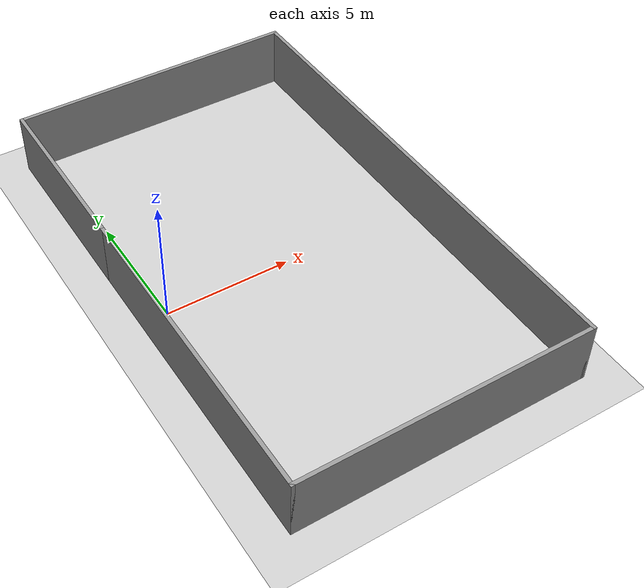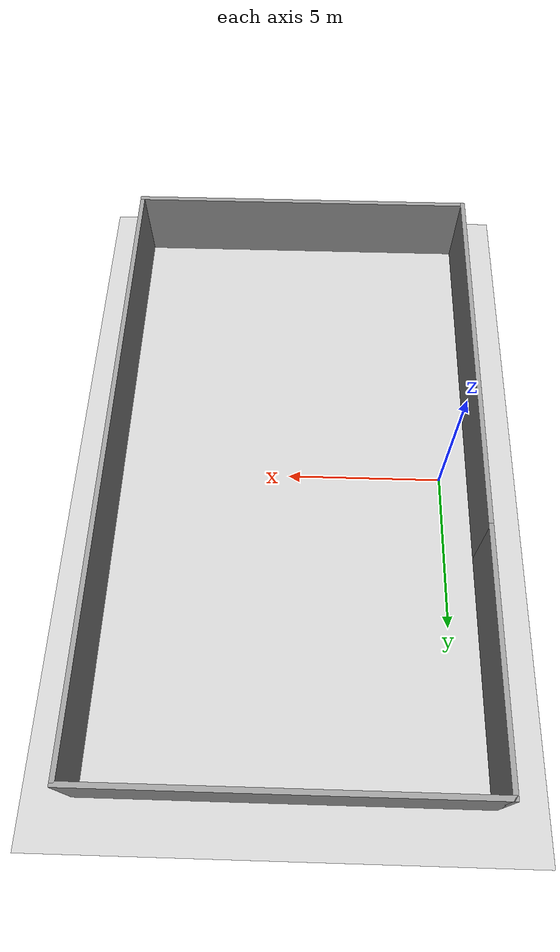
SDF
<sdf version="1.7">
 <world name="default">
  <light name="sun" type="directional">
   <pose>0 0 10 0 -0 0</pose>
   <diffuse>0.8 0.8 0.8 1</diffuse>
   <specular>0.2 0.2 0.2 1</specular>
   <attenuation>
    <range>1000</range>
    <constant>0.9</constant>
    <linear>0.01</linear>
    <quadratic>0.001</quadratic>
   </attenuation>
   <direction>-0.5 0.1 -0.9</direction>
   <spot><inner_angle>0</inner_angle><outer_angle>0</outer_angle><falloff>0</falloff></spot>
  </light>
  <model name="ground_plane">
   <static>1</static>
   <link name="link">
    <collision name="collision">
     <geometry><plane><normal>0 0 1</normal><size>100 100</size></plane></geometry>
     <surface>
      <contact><collide_bitmask>65535</collide_bitmask></contact>
      <friction><ode><mu>100</mu><mu2>50</mu2></ode></friction>
     </surface>
    </collision>
    <visual name="visual">
     <cast_shadows>0</cast_shadows>
     <geometry><plane><normal>0 0 1</normal><size>100 100</size></plane></geometry>
     <material>
      <script><uri>file://media/materials/scripts/gazebo.material</uri><name>Gazebo/Grey</name></script>
     </material>
    </visual>
   </link>
  </model>
  <gravity>0 0 -9.8</gravity>
  <magnetic_field>6e-06 2.3e-05 -4.2e-05</magnetic_field>
  <atmosphere type="adiabatic"/>
  <physics type="ode">
   <max_step_size>0.001</max_step_size>
   <real_time_factor>1</real_time_factor>
   <real_time_update_rate>1000</real_time_update_rate>
  </physics>
  <scene><ambient>0.4 0.4 0.4 1</ambient><background>0.7 0.7 0.7 1</background><shadows>1</shadows></scene>
  <spherical_coordinates>
   <surface_model>EARTH_WGS84</surface_model>
   <latitude_deg>0</latitude_deg>
   <longitude_deg>0</longitude_deg>
   <elevation>0</elevation>
   <heading_deg>0</heading_deg>
  </spherical_coordinates>
  <model name="world_">
   <pose>4.81196 0.037922 0 0 -0 0</pose>
   <link name="Wall_10">
    <collision name="Wall_10_Collision">
     <geometry><box><size>11.75 0.15 2.5</size></box></geometry>
     <pose>0 0 1.25 0 -0 0</pose>
    </collision>
    <visual name="Wall_10_Visual">
     <pose>0 0 1.25 0 -0 0</pose>
     <geometry><box><size>11.75 0.15 2.5</size></box></geometry>
     <material>
      <script><uri>file://media/materials/scripts/gazebo.material</uri><name>Gazebo/Grey</name></script>
      <ambient>1 1 1 1</ambient>
     </material>
     <meta><layer>0</layer></meta>
    </visual>
    <pose>-0 -9.975 0 0 -0 0</pose>
   </link>
   <link name="Wall_14">
    <collision name="Wall_14_Collision">
     <geometry><box><size>11.75 0.15 2.5</size></box></geometry>
     <pose>0 0 1.25 0 -0 0</pose>
    </collision>
    <visual name="Wall_14_Visual">
     <pose>0 0 1.25 0 -0 0</pose>
     <geometry><box><size>11.75 0.15 2.5</size></box></geometry>
     <material>
      <script><uri>file://media/materials/scripts/gazebo.material</uri><name>Gazebo/Grey</name></script>
      <ambient>1 1 1 1</ambient>
     </material>
     <meta><layer>0</layer></meta>
    </visual>
    <pose>-0 9.975 0 0 -0 0</pose>
   </link>
   <link name="Wall_16">
    <collision name="Wall_16_Collision">
     <geometry><box><size>20 0.15 2.5</size></box></geometry>
     <pose>0 0 1.25 0 -0 0</pose>
    </collision>
    <visual name="Wall_16_Visual">
     <pose>0 0 1.25 0 -0 0</pose>
     <geometry><box><size>20 0.15 2.5</size></box></geometry>
     <material>
      <script><uri>file://media/materials/scripts/gazebo.material</uri><name>Gazebo/Grey</name></script>
      <ambient>1 1 1 1</ambient>
     </material>
     <meta><layer>0</layer></meta>
    </visual>
    <pose>5.8 -0.05 0 0 -0 1.5708</pose>
   </link>
   <link name="Wall_7">
    <collision name="Wall_7_Collision">
     <geometry><box><size>7.5 0.15 2.5</size></box></geometry>
     <pose>0 0 1.25 0 -0 0</pose>
    </collision>
    <visual name="Wall_7_Visual">
     <pose>0 0 1.25 0 -0 0</pose>
     <geometry><box><size>7.5 0.15 2.5</size></box></geometry>
     <material>
      <script><uri>file://media/materials/scripts/gazebo.material</uri><name>Gazebo/Grey</name></script>
      <ambient>1 1 1 1</ambient>
     </material>
     <meta><layer>0</layer></meta>
    </visual>
    <pose>-5.8 6.3 0 0 -0 1.5708</pose>
   </link>
   <link name="Wall_9">
    <collision name="Wall_9_Collision">
     <geometry><box><size>12.75 0.15 2.5</size></box></geometry>
     <pose>0 0 1.25 0 -0 0</pose>
    </collision>
    <visual name="Wall_9_Visual">
     <pose>0 0 1.25 0 -0 0</pose>
     <geometry><box><size>12.75 0.15 2.5</size></box></geometry>
     <material>
      <script><uri>file://media/materials/scripts/gazebo.material</uri><name>Gazebo/Grey</name></script>
      <ambient>1 1 1 1</ambient>
     </material>
     <meta><layer>0</layer></meta>
    </visual>
    <pose>-5.8 -3.675 0 0 -0 -1.5708</pose>
   </link>
   <static>1</static>
  </model>
 </world>
</sdf>
